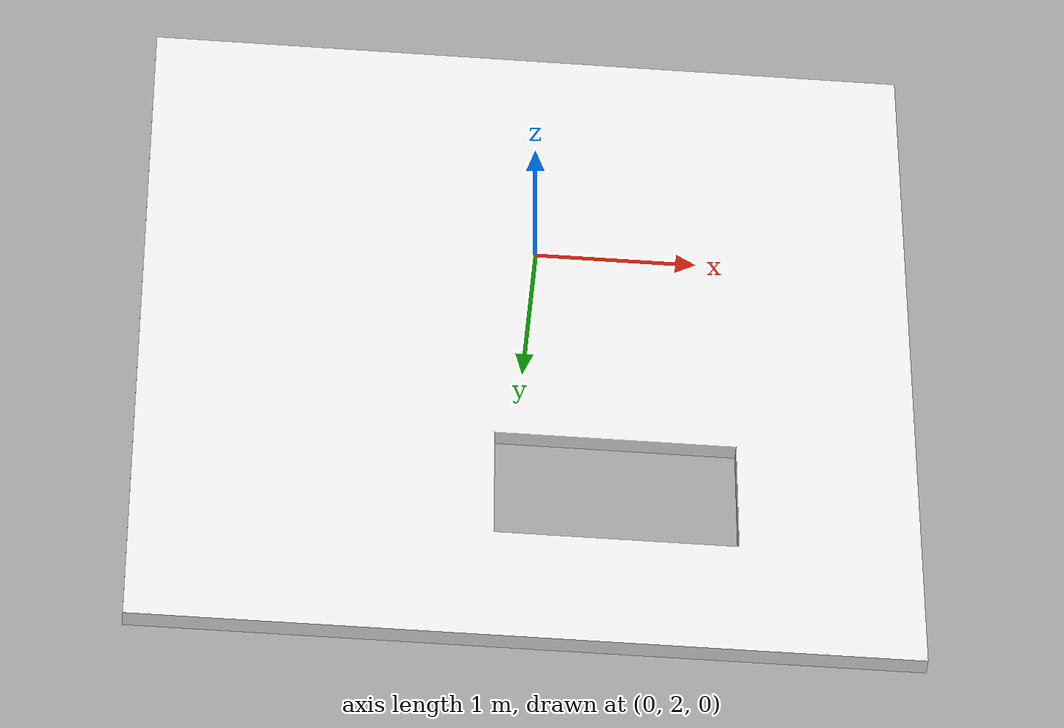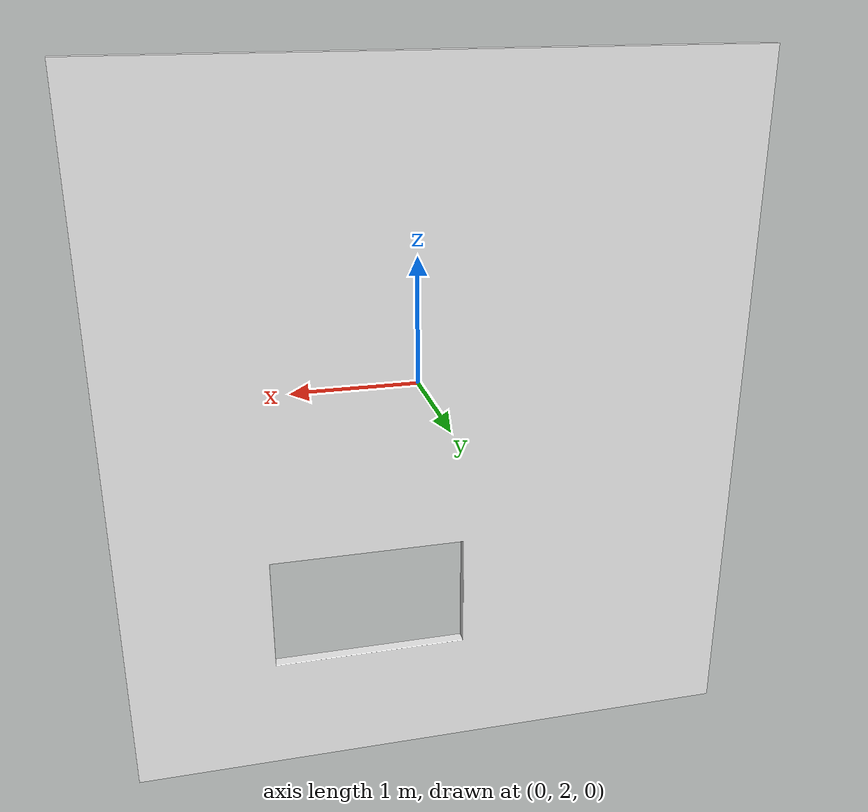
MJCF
<mujoco model="Ceiling_70a7ead7">
  <compiler autolimits="true" boundmass="0.01" angle="radian"/>
  <default>
    <default class="/">
      <default class="__VISUAL_MJT__">
        <geom contype="0" conaffinity="0" group="0" mass="1e-08"/>
      </default>
      <default class="__STRUCTURAL_MJT__">
        <geom contype="8" conaffinity="15" group="4" friction="0.90000000000000002 0.90000000000000002 0.001" density="500" solref="0.025000000000000001 1" solimp="0.998 0.998 0.001"/>
      </default>
      <default class="__DYNAMIC_MJT__">
        <geom contype="1" conaffinity="15" group="4" friction="0.90000000000000002 0.90000000000000002 0.001" density="500" solref="0.025000000000000001 1" solimp="0.998 0.998 0.001"/>
      </default>
      <default class="__ARTICULABLE_DYNAMIC_MJT__">
        <geom contype="0" conaffinity="7" group="4" friction="0.90000000000000002 0.90000000000000002 0.001" density="500" solref="0.025000000000000001 1" solimp="0.998 0.998 0.001"/>
      </default>
    </default>
  </default>
  <asset>
    <texture name="Drywall3" type="2d" file="WallDrywallWhite.png"/>
    <material name="material_Drywall3" class="/" texture="Drywall3" specular="0.5" shininess="0.5" rgba="1 1 1 1"/>
    <mesh name="Ceiling_70a7ead7_Ceiling_70a7ead7" class="/" file="Ceiling_70a7ead7_Ceiling_70a7ead7/Ceiling_70a7ead7_Ceiling_70a7ead7.obj" scale="1 1 1" inertia="legacy"/>
  </asset>
  <worldbody>
    <body name="Ceiling_70a7ead7">
      <body name="Ceiling_70a7ead7_Ceiling_70a7ead7" pos="-0 0 0" quat="1 0 0 0">
        <geom name="Ceiling_70a7ead7_Ceiling_70a7ead7" class="__VISUAL_MJT__" type="mesh" material="material_Drywall3" mesh="Ceiling_70a7ead7_Ceiling_70a7ead7"/>
        <geom name="Ceiling_70a7ead7_Ceiling_70a7ead7_PrimitiveCollider_0" class="__DYNAMIC_MJT__" type="box" size="2.4146480560302734 0.06363300234079361 1.7977465391159058" rgba="0 1 0 1" pos="-0.012663841247558594 2.5439999103546143 0.69785416126251221" quat="0 1 0 0"/>
        <geom name="Ceiling_70a7ead7_Ceiling_70a7ead7_PrimitiveCollider_1" class="__DYNAMIC_MJT__" type="box" size="2.4146480560302734 0.06363300234079361 0.45659637451171875" rgba="0 1 0 1" pos="-0.012663841247558594 2.5439999103546143 -2.4629154205322266" quat="0 1 0 0"/>
        <geom name="Ceiling_70a7ead7_Ceiling_70a7ead7_PrimitiveCollider_2" class="__DYNAMIC_MJT__" type="box" size="0.5558437705039978 0.06363300234079361 0.49798864126205444" rgba="0 1 0 1" pos="1.8429114818572998 2.5439999103546143 -1.565281867980957" quat="0 1 0 0"/>
        <geom name="Ceiling_70a7ead7_Ceiling_70a7ead7_PrimitiveCollider_3" class="__DYNAMIC_MJT__" type="box" size="1.1202998161315918 0.06363300234079361 0.49798864126205444" rgba="0 1 0 1" pos="-1.3126637935638428 2.5439999103546143 -1.565281867980957" quat="0 1 0 0"/>
      </body>
    </body>
  </worldbody>
</mujoco>
